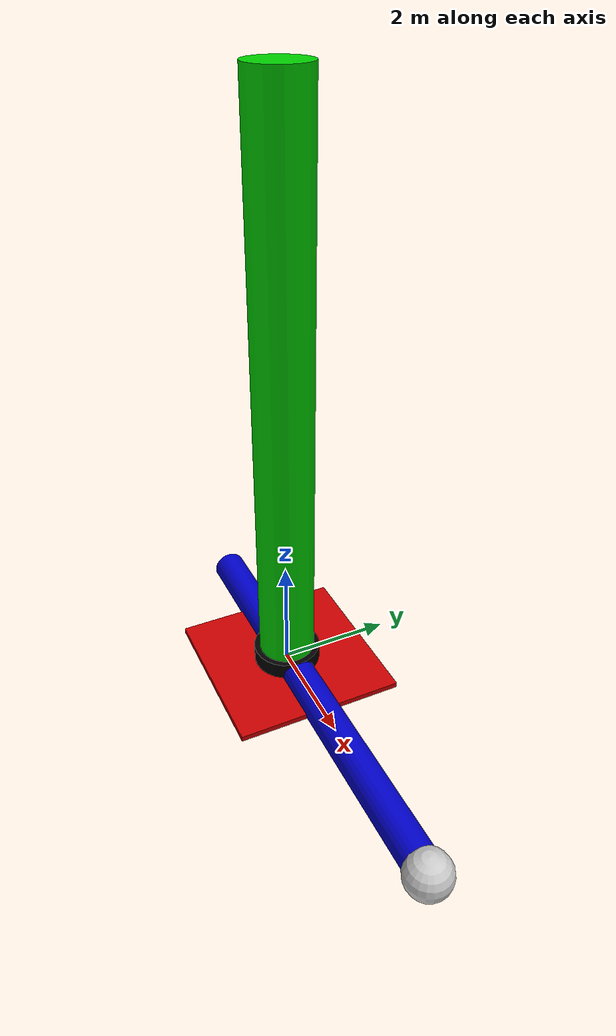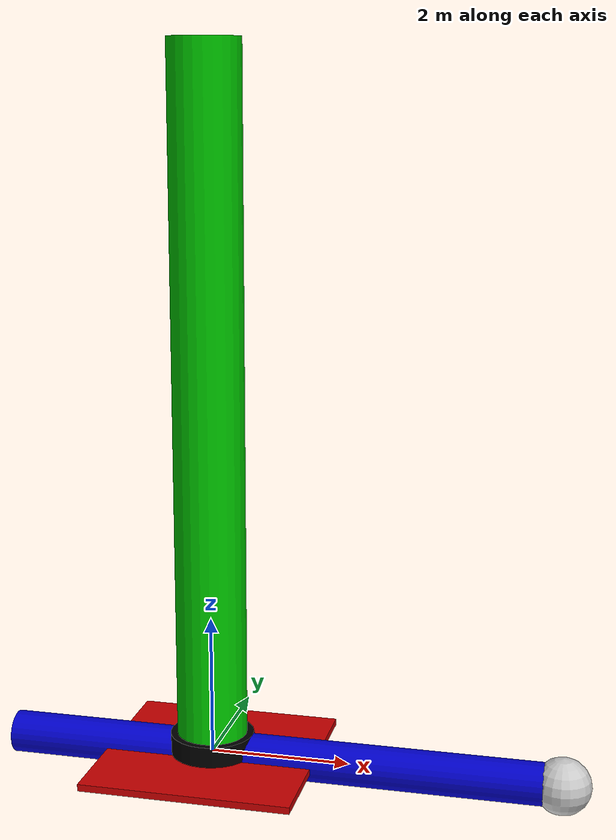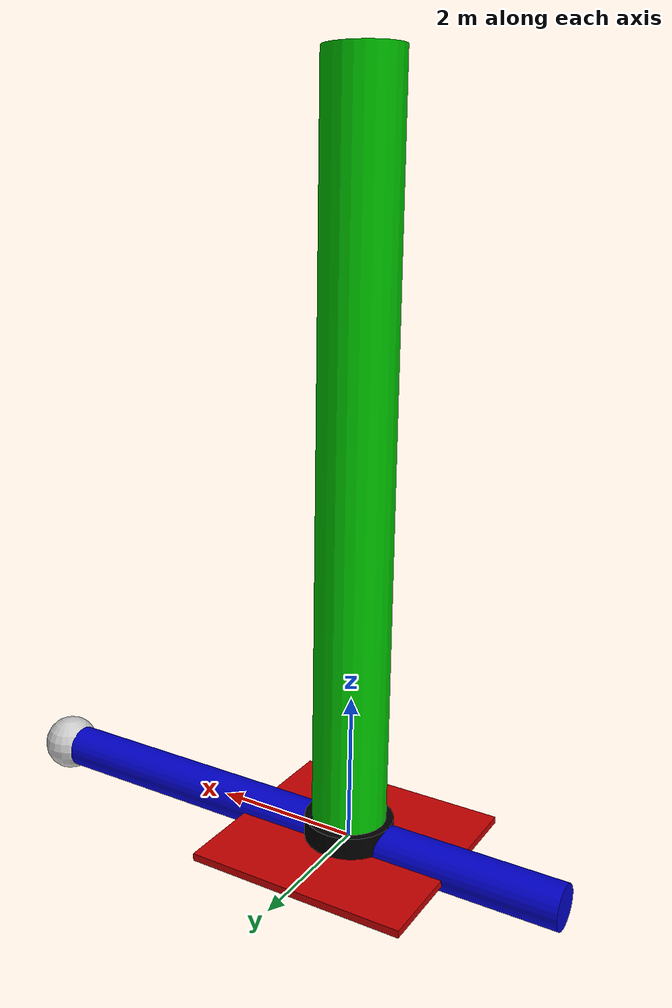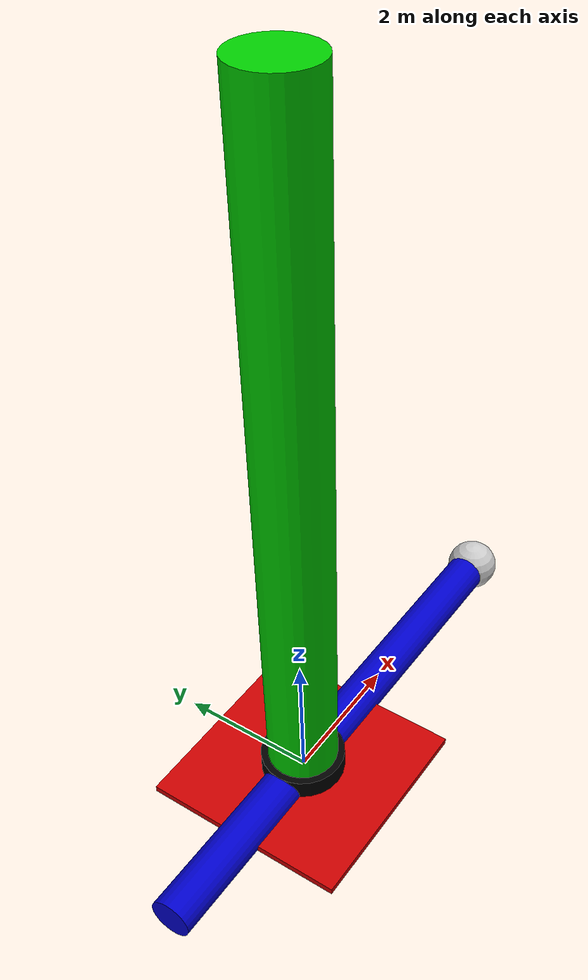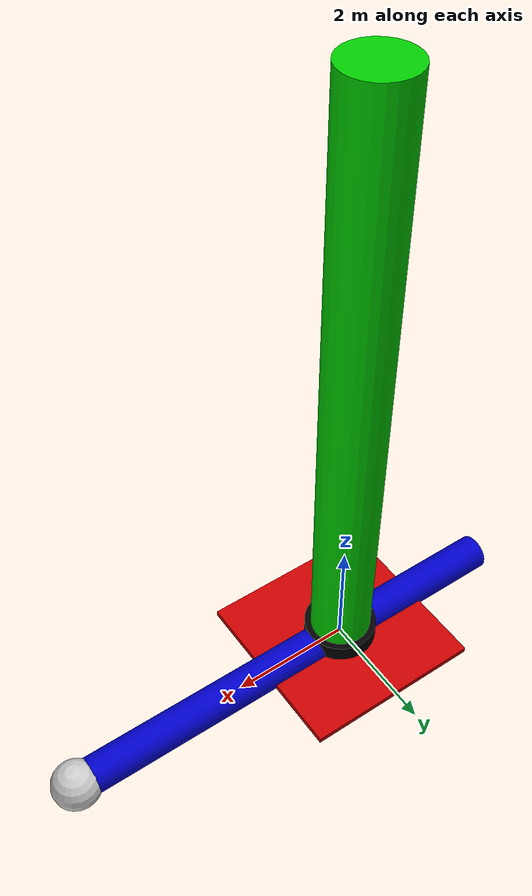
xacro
<?xml version="1.0"?>
<robot xmlns:xacro="http://www.ros.org/wiki/xacro" name="Project1">
	<!-- Materials -->
	<material name="red">
		<color rgba="0.8 0 0 1"/>
	</material>
	<material name="green">
		<color rgba="0 0.8 0 1"/>
	</material>
	<material name="blue">
		<color rgba="0 0 0.8 1"/>
	</material>
	<material name="white">
		<color rgba="0.8 0.8 0.8 1"/>
	</material>
	<material name="black">
		<color rgba="0 0 0 1"/>
	</material>

    <link name='base_link'>
		<visual>
			<geometry>
				<box size="3.0 3.0 0.1"/>
			</geometry>
			<origin xyz="0 0 -0.05" rpy="0 0 0"/>
			<material name="red"/>
		</visual>
	</link>

	<joint name="base_link_to_shaft" type="fixed">
		<parent link="base_link"/>
		<child link="shaft"/>
		<origin xyz="0 0 0"/>
	</joint>

	<link name="shaft">
		<visual>
			<geometry>
				<cylinder length="10" radius="0.5"/>
			</geometry>
			<origin xyz="0 0 5" rpy="0 0 0"/>
			<material name="green"/>
		</visual>
	</link>

	<joint name='elevate' type='prismatic'>
		<parent link="shaft"/>
		<child link="slider_elev"/>
		<origin xyz="0 0 0"/>
		<limit effort="1000" lower="0" upper="10" velocity="0.5"/>
		<axis xyz="0 0 1"/>
	</joint>

	<link name="slider_elev">
		<visual>
			<geometry>
				<cylinder length="0.6" radius="0.6"/>
			</geometry>
			<material name="black"/>
		</visual>
	</link>

	<joint name='spin' type='revolute'>
		<parent link="slider_elev"/>
		<child link="slider"/>
		<origin xyz="0 0 0"/>
		<axis xyz="0 0 1"/>
		<limit effort="1000" lower="${-pi}" upper="${pi}" velocity="0.5"/>
	</joint>

	<link name="slider">
		<visual>
			<geometry>
				<cylinder length="0.6" radius="0.6"/>
			</geometry>
			<material name="black"/>
		</visual>
	</link>

	<joint name="slider_to_arm" type="prismatic">
		<parent link="slider"/>
		<child link="arm"/>
		<origin xyz="0 0 0" rpy="0 0 0"/>
		<limit effort="1000" lower="2" upper="8" velocity="0.5"/>
		<axis xyz="1 0 0"/>
	</joint>

	<link name="arm">
		<visual>
			<geometry>
				<cylinder length="8" radius="0.3"/>
			</geometry>
			<origin xyz="-4 0 0" rpy="0 ${pi/2} 0"/>
			<material name="blue"/>
		</visual>
	</link>

	<joint name='extend' type='fixed'>
		<parent link="arm"/>
		<child link="end_effector"/>
		<origin xyz="0 0 0"/>
	</joint>

	<link name="end_effector">
		<visual>
			<geometry>
				<sphere radius="0.4"/>
			</geometry>
			<origin xyz="0 0 0" rpy="0 0 0"/>
			<material name="white"/>
		</visual>
	</link>

</robot>
